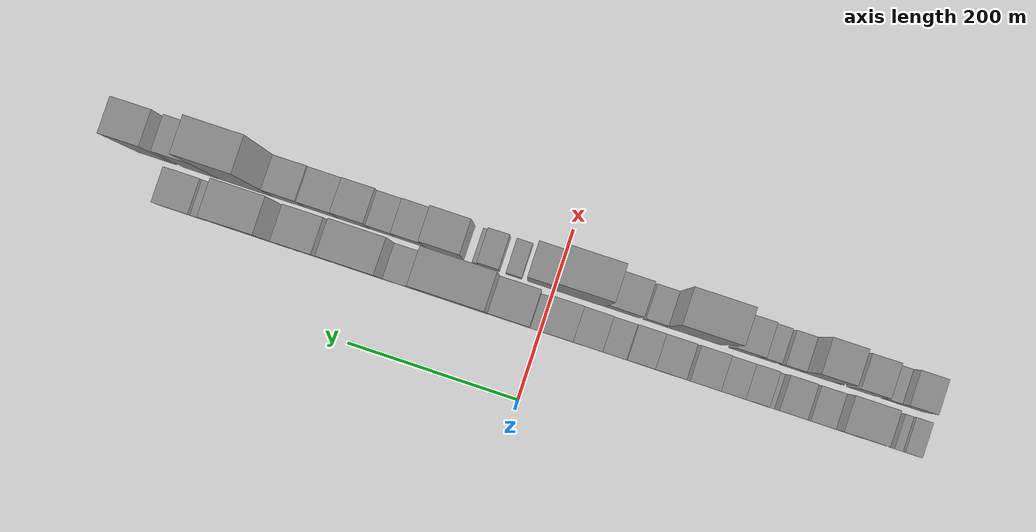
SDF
<sdf version="1.6">
 <world name="default">
  <scene>
   <sky><clouds><speed>12</speed></clouds></sky>
   <ambient>0.4 0.4 0.4 1</ambient>
   <background>0.7 0.7 0.7 1</background>
   <shadows>1</shadows>
  </scene>
  <gravity>0 0 -9.8066</gravity>
  <magnetic_field>6e-06 2.3e-05 -4.2e-05</magnetic_field>
  <physics default="0" name="default_physics" type="ode">
   <ode>
    <solver>
     <type>quick</type>
     <iters>10</iters>
     <sor>1.0</sor>
     <use_dynamic_moi_rescaling>0</use_dynamic_moi_rescaling>
    </solver>
    <constraints>
     <cfm>0</cfm>
     <erp>0.2</erp>
     <contact_max_correcting_vel>100</contact_max_correcting_vel>
     <contact_surface_layer>0.001</contact_surface_layer>
    </constraints>
   </ode>
   <max_step_size>0.004</max_step_size>
   <real_time_factor>1</real_time_factor>
   <real_time_update_rate>250</real_time_update_rate>
  </physics>
  <light name="sun" type="directional">
   <pose>0 0 10 0 0 0</pose>
   <diffuse>0.8 0.8 0.8 1</diffuse>
   <specular>0.2 0.2 0.2 1</specular>
   <attenuation>
    <range>1000</range>
    <constant>0.9</constant>
    <linear>0.01</linear>
    <quadratic>0.001</quadratic>
   </attenuation>
   <direction>-0.5 0.1 -0.9</direction>
  </light>
  <model name="building_1">
   <static>1</static>
   <pose>100.0000 -428.1805 0 0.000000 0.000000 0.000000</pose>
   <link name="link">
    <pose>0 0 16.50 0 0 0</pose>
    <collision name="collision"><geometry><box><size>40.0000 19.6389 33.0000</size></box></geometry></collision>
    <visual name="visual">
     <cast_shadows>0</cast_shadows>
     <geometry><box><size>40.0000 19.6389 33.0000</size></box></geometry>
     <material>
      <script>
       <uri>model://grey_wall/materials/scripts</uri>
       <uri>model://grey_wall/materials/textures</uri>
       <name>vrc/grey_wall</name>
      </script>
     </material>
    </visual>
   </link>
  </model>
  <model name="building_2">
   <static>1</static>
   <pose>100.0000 -413.5381 0 0.000000 0.000000 0.000000</pose>
   <link name="link">
    <pose>0 0 12.00 0 0 0</pose>
    <collision name="collision"><geometry><box><size>40.0000 9.6458 24.0000</size></box></geometry></collision>
    <visual name="visual">
     <cast_shadows>0</cast_shadows>
     <geometry><box><size>40.0000 9.6458 24.0000</size></box></geometry>
     <material>
      <script>
       <uri>model://grey_wall/materials/scripts</uri>
       <uri>model://grey_wall/materials/textures</uri>
       <name>vrc/grey_wall</name>
      </script>
     </material>
    </visual>
   </link>
  </model>
  <model name="building_3">
   <static>1</static>
   <pose>100.0000 -396.0378 0 0.000000 0.000000 0.000000</pose>
   <link name="link">
    <pose>0 0 10.50 0 0 0</pose>
    <collision name="collision"><geometry><box><size>40.0000 9.3547 21.0000</size></box></geometry></collision>
    <visual name="visual">
     <cast_shadows>0</cast_shadows>
     <geometry><box><size>40.0000 9.3547 21.0000</size></box></geometry>
     <material>
      <script>
       <uri>model://grey_wall/materials/scripts</uri>
       <uri>model://grey_wall/materials/textures</uri>
       <name>vrc/grey_wall</name>
      </script>
     </material>
    </visual>
   </link>
  </model>
  <model name="building_4">
   <static>1</static>
   <pose>100.0000 -360.0004 0 0.000000 0.000000 0.000000</pose>
   <link name="link">
    <pose>0 0 43.50 0 0 0</pose>
    <collision name="collision"><geometry><box><size>40.0000 50.7202 87.0000</size></box></geometry></collision>
    <visual name="visual">
     <cast_shadows>0</cast_shadows>
     <geometry><box><size>40.0000 50.7202 87.0000</size></box></geometry>
     <material>
      <script>
       <uri>model://grey_wall/materials/scripts</uri>
       <uri>model://grey_wall/materials/textures</uri>
       <name>vrc/grey_wall</name>
      </script>
     </material>
    </visual>
   </link>
  </model>
  <model name="building_5">
   <static>1</static>
   <pose>100.0000 -320.3611 0 0.000000 0.000000 0.000000</pose>
   <link name="link">
    <pose>0 0 25.50 0 0 0</pose>
    <collision name="collision"><geometry><box><size>40.0000 28.5584 51.0000</size></box></geometry></collision>
    <visual name="visual">
     <cast_shadows>0</cast_shadows>
     <geometry><box><size>40.0000 28.5584 51.0000</size></box></geometry>
     <material>
      <script>
       <uri>model://grey_wall/materials/scripts</uri>
       <uri>model://grey_wall/materials/textures</uri>
       <name>vrc/grey_wall</name>
      </script>
     </material>
    </visual>
   </link>
  </model>
  <model name="building_6">
   <static>1</static>
   <pose>100.0000 -286.1896 0 0.000000 0.000000 0.000000</pose>
   <link name="link">
    <pose>0 0 27.00 0 0 0</pose>
    <collision name="collision"><geometry><box><size>40.0000 31.7845 54.0000</size></box></geometry></collision>
    <visual name="visual">
     <cast_shadows>0</cast_shadows>
     <geometry><box><size>40.0000 31.7845 54.0000</size></box></geometry>
     <material>
      <script>
       <uri>model://grey_wall/materials/scripts</uri>
       <uri>model://grey_wall/materials/textures</uri>
       <name>vrc/grey_wall</name>
      </script>
     </material>
    </visual>
   </link>
  </model>
  <model name="building_7">
   <static>1</static>
   <pose>100.0000 -265.0590 0 0.000000 0.000000 0.000000</pose>
   <link name="link">
    <pose>0 0 12.00 0 0 0</pose>
    <collision name="collision"><geometry><box><size>40.0000 10.4767 24.0000</size></box></geometry></collision>
    <visual name="visual">
     <cast_shadows>0</cast_shadows>
     <geometry><box><size>40.0000 10.4767 24.0000</size></box></geometry>
     <material>
      <script>
       <uri>model://grey_wall/materials/scripts</uri>
       <uri>model://grey_wall/materials/textures</uri>
       <name>vrc/grey_wall</name>
      </script>
     </material>
    </visual>
   </link>
  </model>
  <model name="building_8">
   <static>1</static>
   <pose>100.0000 -246.2515 0 0.000000 0.000000 0.000000</pose>
   <link name="link">
    <pose>0 0 25.50 0 0 0</pose>
    <collision name="collision"><geometry><box><size>40.0000 27.1383 51.0000</size></box></geometry></collision>
    <visual name="visual">
     <cast_shadows>0</cast_shadows>
     <geometry><box><size>40.0000 27.1383 51.0000</size></box></geometry>
     <material>
      <script>
       <uri>model://grey_wall/materials/scripts</uri>
       <uri>model://grey_wall/materials/textures</uri>
       <name>vrc/grey_wall</name>
      </script>
     </material>
    </visual>
   </link>
  </model>
  <model name="building_9">
   <static>1</static>
   <pose>100.0000 -218.0711 0 0.000000 0.000000 0.000000</pose>
   <link name="link">
    <pose>0 0 25.50 0 0 0</pose>
    <collision name="collision"><geometry><box><size>40.0000 29.2224 51.0000</size></box></geometry></collision>
    <visual name="visual">
     <cast_shadows>0</cast_shadows>
     <geometry><box><size>40.0000 29.2224 51.0000</size></box></geometry>
     <material>
      <script>
       <uri>model://grey_wall/materials/scripts</uri>
       <uri>model://grey_wall/materials/textures</uri>
       <name>vrc/grey_wall</name>
      </script>
     </material>
    </visual>
   </link>
  </model>
  <model name="building_10">
   <static>1</static>
   <pose>100.0000 -186.1370 0 0.000000 0.000000 0.000000</pose>
   <link name="link">
    <pose>0 0 30.00 0 0 0</pose>
    <collision name="collision"><geometry><box><size>40.0000 34.6458 60.0000</size></box></geometry></collision>
    <visual name="visual">
     <cast_shadows>0</cast_shadows>
     <geometry><box><size>40.0000 34.6458 60.0000</size></box></geometry>
     <material>
      <script>
       <uri>model://grey_wall/materials/scripts</uri>
       <uri>model://grey_wall/materials/textures</uri>
       <name>vrc/grey_wall</name>
      </script>
     </material>
    </visual>
   </link>
  </model>
  <model name="building_11">
   <static>1</static>
   <pose>100.0000 -147.0834 0 0.000000 0.000000 0.000000</pose>
   <link name="link">
    <pose>0 0 30.00 0 0 0</pose>
    <collision name="collision"><geometry><box><size>40.0000 35.4614 60.0000</size></box></geometry></collision>
    <visual name="visual">
     <cast_shadows>0</cast_shadows>
     <geometry><box><size>40.0000 35.4614 60.0000</size></box></geometry>
     <material>
      <script>
       <uri>model://grey_wall/materials/scripts</uri>
       <uri>model://grey_wall/materials/textures</uri>
       <name>vrc/grey_wall</name>
      </script>
     </material>
    </visual>
   </link>
  </model>
  <model name="building_12">
   <static>1</static>
   <pose>100.0000 -113.5914 0 0.000000 0.000000 0.000000</pose>
   <link name="link">
    <pose>0 0 31.50 0 0 0</pose>
    <collision name="collision"><geometry><box><size>40.0000 31.5225 63.0000</size></box></geometry></collision>
    <visual name="visual">
     <cast_shadows>0</cast_shadows>
     <geometry><box><size>40.0000 31.5225 63.0000</size></box></geometry>
     <material>
      <script>
       <uri>model://grey_wall/materials/scripts</uri>
       <uri>model://grey_wall/materials/textures</uri>
       <name>vrc/grey_wall</name>
      </script>
     </material>
    </visual>
   </link>
  </model>
  <model name="building_13">
   <static>1</static>
   <pose>100.0000 -83.8691 0 0.000000 0.000000 0.000000</pose>
   <link name="link">
    <pose>0 0 25.50 0 0 0</pose>
    <collision name="collision"><geometry><box><size>40.0000 27.9221 51.0000</size></box></geometry></collision>
    <visual name="visual">
     <cast_shadows>0</cast_shadows>
     <geometry><box><size>40.0000 27.9221 51.0000</size></box></geometry>
     <material>
      <script>
       <uri>model://grey_wall/materials/scripts</uri>
       <uri>model://grey_wall/materials/textures</uri>
       <name>vrc/grey_wall</name>
      </script>
     </material>
    </visual>
   </link>
  </model>
  <model name="building_14">
   <static>1</static>
   <pose>100.0000 -53.1966 0 0.000000 0.000000 0.000000</pose>
   <link name="link">
    <pose>0 0 33.00 0 0 0</pose>
    <collision name="collision"><geometry><box><size>40.0000 33.4230 66.0000</size></box></geometry></collision>
    <visual name="visual">
     <cast_shadows>0</cast_shadows>
     <geometry><box><size>40.0000 33.4230 66.0000</size></box></geometry>
     <material>
      <script>
       <uri>model://grey_wall/materials/scripts</uri>
       <uri>model://grey_wall/materials/textures</uri>
       <name>vrc/grey_wall</name>
      </script>
     </material>
    </visual>
   </link>
  </model>
  <model name="building_15">
   <static>1</static>
   <pose>100.0000 -16.6099 0 0.000000 0.000000 0.000000</pose>
   <link name="link">
    <pose>0 0 36.00 0 0 0</pose>
    <collision name="collision"><geometry><box><size>40.0000 39.7503 72.0000</size></box></geometry></collision>
    <visual name="visual">
     <cast_shadows>0</cast_shadows>
     <geometry><box><size>40.0000 39.7503 72.0000</size></box></geometry>
     <material>
      <script>
       <uri>model://grey_wall/materials/scripts</uri>
       <uri>model://grey_wall/materials/textures</uri>
       <name>vrc/grey_wall</name>
      </script>
     </material>
    </visual>
   </link>
  </model>
  <model name="building_16">
   <static>1</static>
   <pose>100.0000 7.5766 0 0.000000 0.000000 0.000000</pose>
   <link name="link">
    <pose>0 0 9.00 0 0 0</pose>
    <collision name="collision"><geometry><box><size>40.0000 8.6227 18.0000</size></box></geometry></collision>
    <visual name="visual">
     <cast_shadows>0</cast_shadows>
     <geometry><box><size>40.0000 8.6227 18.0000</size></box></geometry>
     <material>
      <script>
       <uri>model://grey_wall/materials/scripts</uri>
       <uri>model://grey_wall/materials/textures</uri>
       <name>vrc/grey_wall</name>
      </script>
     </material>
    </visual>
   </link>
  </model>
  <model name="building_17">
   <static>1</static>
   <pose>100.0000 34.3495 0 0.000000 0.000000 0.000000</pose>
   <link name="link">
    <pose>0 0 69.00 0 0 0</pose>
    <collision name="collision"><geometry><box><size>40.0000 44.9232 138.0000</size></box></geometry></collision>
    <visual name="visual">
     <cast_shadows>0</cast_shadows>
     <geometry><box><size>40.0000 44.9232 138.0000</size></box></geometry>
     <material>
      <script>
       <uri>model://grey_wall/materials/scripts</uri>
       <uri>model://grey_wall/materials/textures</uri>
       <name>vrc/grey_wall</name>
      </script>
     </material>
    </visual>
   </link>
  </model>
  <model name="building_18">
   <static>1</static>
   <pose>100.0000 95.3990 0 0.000000 0.000000 0.000000</pose>
   <link name="link">
    <pose>0 0 111.00 0 0 0</pose>
    <collision name="collision"><geometry><box><size>40.0000 77.1758 222.0000</size></box></geometry></collision>
    <visual name="visual">
     <cast_shadows>0</cast_shadows>
     <geometry><box><size>40.0000 77.1758 222.0000</size></box></geometry>
     <material>
      <script>
       <uri>model://grey_wall/materials/scripts</uri>
       <uri>model://grey_wall/materials/textures</uri>
       <name>vrc/grey_wall</name>
      </script>
     </material>
    </visual>
   </link>
  </model>
  <model name="building_19">
   <static>1</static>
   <pose>100.0000 154.9476 0 0.000000 0.000000 0.000000</pose>
   <link name="link">
    <pose>0 0 40.50 0 0 0</pose>
    <collision name="collision"><geometry><box><size>40.0000 41.9214 81.0000</size></box></geometry></collision>
    <visual name="visual">
     <cast_shadows>0</cast_shadows>
     <geometry><box><size>40.0000 41.9214 81.0000</size></box></geometry>
     <material>
      <script>
       <uri>model://grey_wall/materials/scripts</uri>
       <uri>model://grey_wall/materials/textures</uri>
       <name>vrc/grey_wall</name>
      </script>
     </material>
    </visual>
   </link>
  </model>
  <model name="building_20">
   <static>1</static>
   <pose>100.0000 206.6378 0 0.000000 0.000000 0.000000</pose>
   <link name="link">
    <pose>0 0 78.00 0 0 0</pose>
    <collision name="collision"><geometry><box><size>40.0000 61.4591 156.0000</size></box></geometry></collision>
    <visual name="visual">
     <cast_shadows>0</cast_shadows>
     <geometry><box><size>40.0000 61.4591 156.0000</size></box></geometry>
     <material>
      <script>
       <uri>model://grey_wall/materials/scripts</uri>
       <uri>model://grey_wall/materials/textures</uri>
       <name>vrc/grey_wall</name>
      </script>
     </material>
    </visual>
   </link>
  </model>
  <model name="building_21">
   <static>1</static>
   <pose>100.0000 268.3945 0 0.000000 0.000000 0.000000</pose>
   <link name="link">
    <pose>0 0 66.00 0 0 0</pose>
    <collision name="collision"><geometry><box><size>40.0000 44.0545 132.0000</size></box></geometry></collision>
    <visual name="visual">
     <cast_shadows>0</cast_shadows>
     <geometry><box><size>40.0000 44.0545 132.0000</size></box></geometry>
     <material>
      <script>
       <uri>model://grey_wall/materials/scripts</uri>
       <uri>model://grey_wall/materials/textures</uri>
       <name>vrc/grey_wall</name>
      </script>
     </material>
    </visual>
   </link>
  </model>
  <model name="building_22">
   <static>1</static>
   <pose>100.0000 324.8745 0 0.000000 0.000000 0.000000</pose>
   <link name="link">
    <pose>0 0 93.00 0 0 0</pose>
    <collision name="collision"><geometry><box><size>40.0000 56.9056 186.0000</size></box></geometry></collision>
    <visual name="visual">
     <cast_shadows>0</cast_shadows>
     <geometry><box><size>40.0000 56.9056 186.0000</size></box></geometry>
     <material>
      <script>
       <uri>model://grey_wall/materials/scripts</uri>
       <uri>model://grey_wall/materials/textures</uri>
       <name>vrc/grey_wall</name>
      </script>
     </material>
    </visual>
   </link>
  </model>
  <model name="building_23">
   <static>1</static>
   <pose>100.0000 373.7700 0 0.000000 0.000000 0.000000</pose>
   <link name="link">
    <pose>0 0 34.50 0 0 0</pose>
    <collision name="collision"><geometry><box><size>40.0000 40.8853 69.0000</size></box></geometry></collision>
    <visual name="visual">
     <cast_shadows>0</cast_shadows>
     <geometry><box><size>40.0000 40.8853 69.0000</size></box></geometry>
     <material>
      <script>
       <uri>model://grey_wall/materials/scripts</uri>
       <uri>model://grey_wall/materials/textures</uri>
       <name>vrc/grey_wall</name>
      </script>
     </material>
    </visual>
   </link>
  </model>
  <model name="building_24">
   <static>1</static>
   <pose>100.0000 414.8023 0 0.000000 0.000000 0.000000</pose>
   <link name="link">
    <pose>0 0 39.00 0 0 0</pose>
    <collision name="collision"><geometry><box><size>40.0000 41.1792 78.0000</size></box></geometry></collision>
    <visual name="visual">
     <cast_shadows>0</cast_shadows>
     <geometry><box><size>40.0000 41.1792 78.0000</size></box></geometry>
     <material>
      <script>
       <uri>model://grey_wall/materials/scripts</uri>
       <uri>model://grey_wall/materials/textures</uri>
       <name>vrc/grey_wall</name>
      </script>
     </material>
    </visual>
   </link>
  </model>
  <model name="building_25">
   <static>1</static>
   <pose>100.0000 445.5836 0 0.000000 0.000000 0.000000</pose>
   <link name="link">
    <pose>0 0 7.50 0 0 0</pose>
    <collision name="collision"><geometry><box><size>40.0000 6.3834 15.0000</size></box></geometry></collision>
    <visual name="visual">
     <cast_shadows>0</cast_shadows>
     <geometry><box><size>40.0000 6.3834 15.0000</size></box></geometry>
     <material>
      <script>
       <uri>model://grey_wall/materials/scripts</uri>
       <uri>model://grey_wall/materials/textures</uri>
       <name>vrc/grey_wall</name>
      </script>
     </material>
    </visual>
   </link>
  </model>
  <model name="building_26">
   <static>1</static>
   <pose>149.0000 -416.7701 0 0.000000 0.000000 0.000000</pose>
   <link name="link">
    <pose>0 0 28.50 0 0 0</pose>
    <collision name="collision"><geometry><box><size>40.0000 32.4598 57.0000</size></box></geometry></collision>
    <visual name="visual">
     <cast_shadows>0</cast_shadows>
     <geometry><box><size>40.0000 32.4598 57.0000</size></box></geometry>
     <material>
      <script>
       <uri>model://grey_wall/materials/scripts</uri>
       <uri>model://grey_wall/materials/textures</uri>
       <name>vrc/grey_wall</name>
      </script>
     </material>
    </visual>
   </link>
  </model>
  <model name="building_27">
   <static>1</static>
   <pose>149.0000 -392.3642 0 0.000000 0.000000 0.000000</pose>
   <link name="link">
    <pose>0 0 15.00 0 0 0</pose>
    <collision name="collision"><geometry><box><size>40.0000 16.3521 30.0000</size></box></geometry></collision>
    <visual name="visual">
     <cast_shadows>0</cast_shadows>
     <geometry><box><size>40.0000 16.3521 30.0000</size></box></geometry>
     <material>
      <script>
       <uri>model://grey_wall/materials/scripts</uri>
       <uri>model://grey_wall/materials/textures</uri>
       <name>vrc/grey_wall</name>
      </script>
     </material>
    </visual>
   </link>
  </model>
  <model name="building_28">
   <static>1</static>
   <pose>149.0000 -360.3171 0 0.000000 0.000000 0.000000</pose>
   <link name="link">
    <pose>0 0 33.00 0 0 0</pose>
    <collision name="collision"><geometry><box><size>40.0000 33.7421 66.0000</size></box></geometry></collision>
    <visual name="visual">
     <cast_shadows>0</cast_shadows>
     <geometry><box><size>40.0000 33.7421 66.0000</size></box></geometry>
     <material>
      <script>
       <uri>model://grey_wall/materials/scripts</uri>
       <uri>model://grey_wall/materials/textures</uri>
       <name>vrc/grey_wall</name>
      </script>
     </material>
    </visual>
   </link>
  </model>
  <model name="building_29">
   <static>1</static>
   <pose>149.0000 -332.3408 0 0.000000 0.000000 0.000000</pose>
   <link name="link">
    <pose>0 0 9.00 0 0 0</pose>
    <collision name="collision"><geometry><box><size>40.0000 8.2105 18.0000</size></box></geometry></collision>
    <visual name="visual">
     <cast_shadows>0</cast_shadows>
     <geometry><box><size>40.0000 8.2105 18.0000</size></box></geometry>
     <material>
      <script>
       <uri>model://grey_wall/materials/scripts</uri>
       <uri>model://grey_wall/materials/textures</uri>
       <name>vrc/grey_wall</name>
      </script>
     </material>
    </visual>
   </link>
  </model>
  <model name="building_30">
   <static>1</static>
   <pose>149.0000 -308.2875 0 0.000000 0.000000 0.000000</pose>
   <link name="link">
    <pose>0 0 55.50 0 0 0</pose>
    <collision name="collision"><geometry><box><size>40.0000 39.8962 111.0000</size></box></geometry></collision>
    <visual name="visual">
     <cast_shadows>0</cast_shadows>
     <geometry><box><size>40.0000 39.8962 111.0000</size></box></geometry>
     <material>
      <script>
       <uri>model://grey_wall/materials/scripts</uri>
       <uri>model://grey_wall/materials/textures</uri>
       <name>vrc/grey_wall</name>
      </script>
     </material>
    </visual>
   </link>
  </model>
  <model name="building_31">
   <static>1</static>
   <pose>149.0000 -276.2975 0 0.000000 0.000000 0.000000</pose>
   <link name="link">
    <pose>0 0 21.00 0 0 0</pose>
    <collision name="collision"><geometry><box><size>40.0000 24.0838 42.0000</size></box></geometry></collision>
    <visual name="visual">
     <cast_shadows>0</cast_shadows>
     <geometry><box><size>40.0000 24.0838 42.0000</size></box></geometry>
     <material>
      <script>
       <uri>model://grey_wall/materials/scripts</uri>
       <uri>model://grey_wall/materials/textures</uri>
       <name>vrc/grey_wall</name>
      </script>
     </material>
    </visual>
   </link>
  </model>
  <model name="building_32">
   <static>1</static>
   <pose>149.0000 -249.6036 0 0.000000 0.000000 0.000000</pose>
   <link name="link">
    <pose>0 0 21.00 0 0 0</pose>
    <collision name="collision"><geometry><box><size>40.0000 21.3040 42.0000</size></box></geometry></collision>
    <visual name="visual">
     <cast_shadows>0</cast_shadows>
     <geometry><box><size>40.0000 21.3040 42.0000</size></box></geometry>
     <material>
      <script>
       <uri>model://grey_wall/materials/scripts</uri>
       <uri>model://grey_wall/materials/textures</uri>
       <name>vrc/grey_wall</name>
      </script>
     </material>
    </visual>
   </link>
  </model>
  <model name="building_33">
   <static>1</static>
   <pose>149.0000 -222.2286 0 0.000000 0.000000 0.000000</pose>
   <link name="link">
    <pose>0 0 30.00 0 0 0</pose>
    <collision name="collision"><geometry><box><size>40.0000 33.4460 60.0000</size></box></geometry></collision>
    <visual name="visual">
     <cast_shadows>0</cast_shadows>
     <geometry><box><size>40.0000 33.4460 60.0000</size></box></geometry>
     <material>
      <script>
       <uri>model://grey_wall/materials/scripts</uri>
       <uri>model://grey_wall/materials/textures</uri>
       <name>vrc/grey_wall</name>
      </script>
     </material>
    </visual>
   </link>
  </model>
  <model name="building_34">
   <static>1</static>
   <pose>149.0000 -162.9360 0 0.000000 0.000000 0.000000</pose>
   <link name="link">
    <pose>0 0 85.50 0 0 0</pose>
    <collision name="collision"><geometry><box><size>40.0000 65.1391 171.0000</size></box></geometry></collision>
    <visual name="visual">
     <cast_shadows>0</cast_shadows>
     <geometry><box><size>40.0000 65.1391 171.0000</size></box></geometry>
     <material>
      <script>
       <uri>model://grey_wall/materials/scripts</uri>
       <uri>model://grey_wall/materials/textures</uri>
       <name>vrc/grey_wall</name>
      </script>
     </material>
    </visual>
   </link>
  </model>
  <model name="building_35">
   <static>1</static>
   <pose>149.0000 -117.4786 0 0.000000 0.000000 0.000000</pose>
   <link name="link">
    <pose>0 0 22.50 0 0 0</pose>
    <collision name="collision"><geometry><box><size>40.0000 25.7757 45.0000</size></box></geometry></collision>
    <visual name="visual">
     <cast_shadows>0</cast_shadows>
     <geometry><box><size>40.0000 25.7757 45.0000</size></box></geometry>
     <material>
      <script>
       <uri>model://grey_wall/materials/scripts</uri>
       <uri>model://grey_wall/materials/textures</uri>
       <name>vrc/grey_wall</name>
      </script>
     </material>
    </visual>
   </link>
  </model>
  <model name="building_36">
   <static>1</static>
   <pose>149.0000 -80.6146 0 0.000000 0.000000 0.000000</pose>
   <link name="link">
    <pose>0 0 34.50 0 0 0</pose>
    <collision name="collision"><geometry><box><size>40.0000 39.9522 69.0000</size></box></geometry></collision>
    <visual name="visual">
     <cast_shadows>0</cast_shadows>
     <geometry><box><size>40.0000 39.9522 69.0000</size></box></geometry>
     <material>
      <script>
       <uri>model://grey_wall/materials/scripts</uri>
       <uri>model://grey_wall/materials/textures</uri>
       <name>vrc/grey_wall</name>
      </script>
     </material>
    </visual>
   </link>
  </model>
  <model name="building_37">
   <static>1</static>
   <pose>149.0000 -30.9183 0 0.000000 0.000000 0.000000</pose>
   <link name="link">
    <pose>0 0 90.00 0 0 0</pose>
    <collision name="collision"><geometry><box><size>40.0000 59.4406 180.0000</size></box></geometry></collision>
    <visual name="visual">
     <cast_shadows>0</cast_shadows>
     <geometry><box><size>40.0000 59.4406 180.0000</size></box></geometry>
     <material>
      <script>
       <uri>model://grey_wall/materials/scripts</uri>
       <uri>model://grey_wall/materials/textures</uri>
       <name>vrc/grey_wall</name>
      </script>
     </material>
    </visual>
   </link>
  </model>
  <model name="building_38">
   <static>1</static>
   <pose>149.0000 14.7260 0 0.000000 0.000000 0.000000</pose>
   <link name="link">
    <pose>0 0 51.00 0 0 0</pose>
    <collision name="collision"><geometry><box><size>40.0000 31.8480 102.0000</size></box></geometry></collision>
    <visual name="visual">
     <cast_shadows>0</cast_shadows>
     <geometry><box><size>40.0000 31.8480 102.0000</size></box></geometry>
     <material>
      <script>
       <uri>model://grey_wall/materials/scripts</uri>
       <uri>model://grey_wall/materials/textures</uri>
       <name>vrc/grey_wall</name>
      </script>
     </material>
    </visual>
   </link>
  </model>
  <model name="building_39">
   <static>1</static>
   <pose>149.0000 46.8514 0 0.000000 0.000000 0.000000</pose>
   <link name="link">
    <pose>0 0 16.50 0 0 0</pose>
    <collision name="collision"><geometry><box><size>40.0000 18.4027 33.0000</size></box></geometry></collision>
    <visual name="visual">
     <cast_shadows>0</cast_shadows>
     <geometry><box><size>40.0000 18.4027 33.0000</size></box></geometry>
     <material>
      <script>
       <uri>model://grey_wall/materials/scripts</uri>
       <uri>model://grey_wall/materials/textures</uri>
       <name>vrc/grey_wall</name>
      </script>
     </material>
    </visual>
   </link>
  </model>
  <model name="building_40">
   <static>1</static>
   <pose>149.0000 76.5468 0 0.000000 0.000000 0.000000</pose>
   <link name="link">
    <pose>0 0 24.00 0 0 0</pose>
    <collision name="collision"><geometry><box><size>40.0000 24.9882 48.0000</size></box></geometry></collision>
    <visual name="visual">
     <cast_shadows>0</cast_shadows>
     <geometry><box><size>40.0000 24.9882 48.0000</size></box></geometry>
     <material>
      <script>
       <uri>model://grey_wall/materials/scripts</uri>
       <uri>model://grey_wall/materials/textures</uri>
       <name>vrc/grey_wall</name>
      </script>
     </material>
    </visual>
   </link>
  </model>
  <model name="building_41">
   <static>1</static>
   <pose>149.0000 92.5340 0 0.000000 0.000000 0.000000</pose>
   <link name="link">
    <pose>0 0 7.50 0 0 0</pose>
    <collision name="collision"><geometry><box><size>40.0000 6.9862 15.0000</size></box></geometry></collision>
    <visual name="visual">
     <cast_shadows>0</cast_shadows>
     <geometry><box><size>40.0000 6.9862 15.0000</size></box></geometry>
     <material>
      <script>
       <uri>model://grey_wall/materials/scripts</uri>
       <uri>model://grey_wall/materials/textures</uri>
       <name>vrc/grey_wall</name>
      </script>
     </material>
    </visual>
   </link>
  </model>
  <model name="building_42">
   <static>1</static>
   <pose>149.0000 129.0347 0 0.000000 0.000000 0.000000</pose>
   <link name="link">
    <pose>0 0 45.00 0 0 0</pose>
    <collision name="collision"><geometry><box><size>40.0000 46.0151 90.0000</size></box></geometry></collision>
    <visual name="visual">
     <cast_shadows>0</cast_shadows>
     <geometry><box><size>40.0000 46.0151 90.0000</size></box></geometry>
     <material>
      <script>
       <uri>model://grey_wall/materials/scripts</uri>
       <uri>model://grey_wall/materials/textures</uri>
       <name>vrc/grey_wall</name>
      </script>
     </material>
    </visual>
   </link>
  </model>
  <model name="building_43">
   <static>1</static>
   <pose>149.0000 169.2378 0 0.000000 0.000000 0.000000</pose>
   <link name="link">
    <pose>0 0 30.00 0 0 0</pose>
    <collision name="collision"><geometry><box><size>40.0000 34.3912 60.0000</size></box></geometry></collision>
    <visual name="visual">
     <cast_shadows>0</cast_shadows>
     <geometry><box><size>40.0000 34.3912 60.0000</size></box></geometry>
     <material>
      <script>
       <uri>model://grey_wall/materials/scripts</uri>
       <uri>model://grey_wall/materials/textures</uri>
       <name>vrc/grey_wall</name>
      </script>
     </material>
    </visual>
   </link>
  </model>
  <model name="building_44">
   <static>1</static>
   <pose>149.0000 201.0209 0 0.000000 0.000000 0.000000</pose>
   <link name="link">
    <pose>0 0 27.00 0 0 0</pose>
    <collision name="collision"><geometry><box><size>40.0000 29.1749 54.0000</size></box></geometry></collision>
    <visual name="visual">
     <cast_shadows>0</cast_shadows>
     <geometry><box><size>40.0000 29.1749 54.0000</size></box></geometry>
     <material>
      <script>
       <uri>model://grey_wall/materials/scripts</uri>
       <uri>model://grey_wall/materials/textures</uri>
       <name>vrc/grey_wall</name>
      </script>
     </material>
    </visual>
   </link>
  </model>
  <model name="building_45">
   <static>1</static>
   <pose>149.0000 234.3901 0 0.000000 0.000000 0.000000</pose>
   <link name="link">
    <pose>0 0 36.00 0 0 0</pose>
    <collision name="collision"><geometry><box><size>40.0000 37.5636 72.0000</size></box></geometry></collision>
    <visual name="visual">
     <cast_shadows>0</cast_shadows>
     <geometry><box><size>40.0000 37.5636 72.0000</size></box></geometry>
     <material>
      <script>
       <uri>model://grey_wall/materials/scripts</uri>
       <uri>model://grey_wall/materials/textures</uri>
       <name>vrc/grey_wall</name>
      </script>
     </material>
    </visual>
   </link>
  </model>
  <model name="building_46">
   <static>1</static>
   <pose>149.0000 272.7248 0 0.000000 0.000000 0.000000</pose>
   <link name="link">
    <pose>0 0 33.00 0 0 0</pose>
    <collision name="collision"><geometry><box><size>40.0000 39.1059 66.0000</size></box></geometry></collision>
    <visual name="visual">
     <cast_shadows>0</cast_shadows>
     <geometry><box><size>40.0000 39.1059 66.0000</size></box></geometry>
     <material>
      <script>
       <uri>model://grey_wall/materials/scripts</uri>
       <uri>model://grey_wall/materials/textures</uri>
       <name>vrc/grey_wall</name>
      </script>
     </material>
    </visual>
   </link>
  </model>
  <model name="building_47">
   <static>1</static>
   <pose>149.0000 311.3904 0 0.000000 0.000000 0.000000</pose>
   <link name="link">
    <pose>0 0 36.00 0 0 0</pose>
    <collision name="collision"><geometry><box><size>40.0000 38.2252 72.0000</size></box></geometry></collision>
    <visual name="visual">
     <cast_shadows>0</cast_shadows>
     <geometry><box><size>40.0000 38.2252 72.0000</size></box></geometry>
     <material>
      <script>
       <uri>model://grey_wall/materials/scripts</uri>
       <uri>model://grey_wall/materials/textures</uri>
       <name>vrc/grey_wall</name>
      </script>
     </material>
    </visual>
   </link>
  </model>
  <model name="building_48">
   <static>1</static>
   <pose>149.0000 361.8357 0 0.000000 0.000000 0.000000</pose>
   <link name="link">
    <pose>0 0 102.00 0 0 0</pose>
    <collision name="collision"><geometry><box><size>40.0000 62.6654 204.0000</size></box></geometry></collision>
    <visual name="visual">
     <cast_shadows>0</cast_shadows>
     <geometry><box><size>40.0000 62.6654 204.0000</size></box></geometry>
     <material>
      <script>
       <uri>model://grey_wall/materials/scripts</uri>
       <uri>model://grey_wall/materials/textures</uri>
       <name>vrc/grey_wall</name>
      </script>
     </material>
    </visual>
   </link>
  </model>
  <model name="building_49">
   <static>1</static>
   <pose>149.0000 414.7337 0 0.000000 0.000000 0.000000</pose>
   <link name="link">
    <pose>0 0 64.50 0 0 0</pose>
    <collision name="collision"><geometry><box><size>40.0000 43.1308 129.0000</size></box></geometry></collision>
    <visual name="visual">
     <cast_shadows>0</cast_shadows>
     <geometry><box><size>40.0000 43.1308 129.0000</size></box></geometry>
     <material>
      <script>
       <uri>model://grey_wall/materials/scripts</uri>
       <uri>model://grey_wall/materials/textures</uri>
       <name>vrc/grey_wall</name>
      </script>
     </material>
    </visual>
   </link>
  </model>
  <model name="building_50">
   <static>1</static>
   <pose>149.0000 468.5498 0 0.000000 0.000000 0.000000</pose>
   <link name="link">
    <pose>0 0 69.00 0 0 0</pose>
    <collision name="collision"><geometry><box><size>40.0000 44.5015 138.0000</size></box></geometry></collision>
    <visual name="visual">
     <cast_shadows>0</cast_shadows>
     <geometry><box><size>40.0000 44.5015 138.0000</size></box></geometry>
     <material>
      <script>
       <uri>model://grey_wall/materials/scripts</uri>
       <uri>model://grey_wall/materials/textures</uri>
       <name>vrc/grey_wall</name>
      </script>
     </material>
    </visual>
   </link>
  </model>
 </world>
</sdf>
